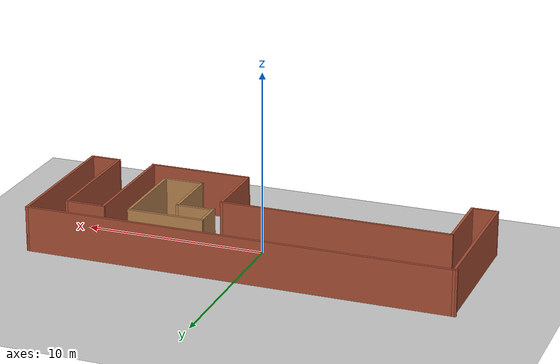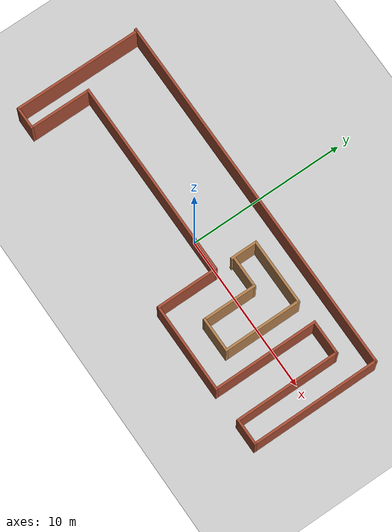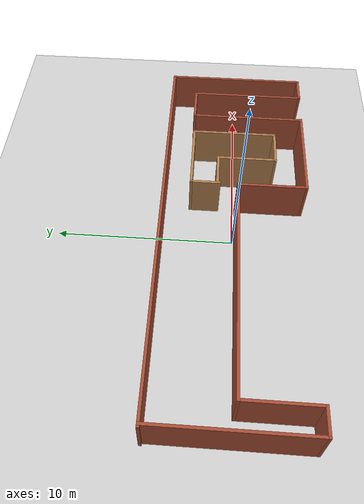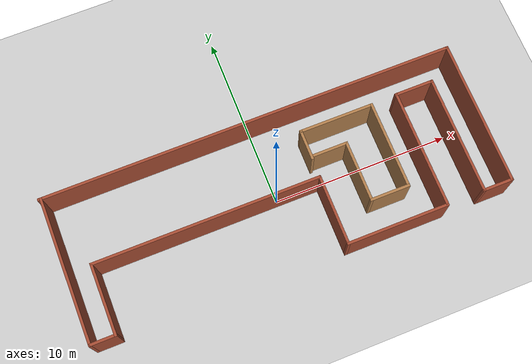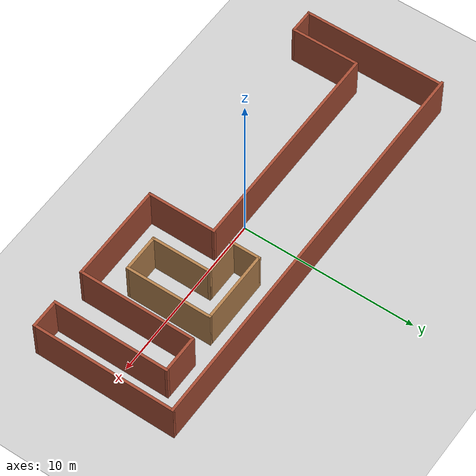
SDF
<sdf version="1.6">
 <world name="default">
  <light name="sun" type="directional">
   <pose>0 0 10 0 -0 0</pose>
   <diffuse>0.8 0.8 0.8 1</diffuse>
   <specular>0.1 0.1 0.1 1</specular>
   <attenuation>
    <range>1000</range>
    <constant>0.9</constant>
    <linear>0.01</linear>
    <quadratic>0.001</quadratic>
   </attenuation>
   <direction>-0.5 0.5 -1</direction>
  </light>
  <model name="ground_plane">
   <static>1</static>
   <link name="link">
    <collision name="collision">
     <geometry><plane><normal>0 0 1</normal><size>100 100</size></plane></geometry>
     <surface><friction><ode><mu>100</mu><mu2>50</mu2></ode></friction></surface>
    </collision>
    <visual name="visual">
     <cast_shadows>0</cast_shadows>
     <geometry><plane><normal>0 0 1</normal><size>100 100</size></plane></geometry>
     <material>
      <script><uri>file://media/materials/scripts/gazebo.material</uri><name>Gazebo/Grey</name></script>
     </material>
    </visual>
   </link>
  </model>
  <gravity>0 0 -9.8</gravity>
  <magnetic_field>6e-06 2.3e-05 -4.2e-05</magnetic_field>
  <atmosphere type="adiabatic"/>
  <physics name="default_physics" default="0" type="ode">
   <max_step_size>0.001</max_step_size>
   <real_time_factor>1</real_time_factor>
   <real_time_update_rate>1000</real_time_update_rate>
  </physics>
  <scene><ambient>0.4 0.4 0.4 1</ambient><background>0.7 0.7 0.7 1</background><shadows>1</shadows></scene>
  <spherical_coordinates>
   <surface_model>EARTH_WGS84</surface_model>
   <latitude_deg>0</latitude_deg>
   <longitude_deg>0</longitude_deg>
   <elevation>0</elevation>
   <heading_deg>0</heading_deg>
  </spherical_coordinates>
  <model name="building1">
   <link name="Wall_10">
    <collision name="Wall_10_Collision">
     <geometry><box><size>12.75 0.15 2.5</size></box></geometry>
     <pose>0 0 1.25 0 -0 0</pose>
    </collision>
    <visual name="Wall_10_Visual">
     <pose>0 0 1.25 0 -0 0</pose>
     <geometry><box><size>12.75 0.15 2.5</size></box></geometry>
     <material>
      <script><uri>file://media/materials/scripts/gazebo.material</uri><name>Gazebo/Bricks</name></script>
      <ambient>1 1 1 1</ambient>
     </material>
    </visual>
    <pose>-3.925 -0.2 0 0 -0 3.14159</pose>
   </link>
   <link name="Wall_11">
    <collision name="Wall_11_Collision">
     <geometry><box><size>4 0.15 2.5</size></box></geometry>
     <pose>0 0 1.25 0 -0 0</pose>
    </collision>
    <visual name="Wall_11_Visual">
     <pose>0 0 1.25 0 -0 0</pose>
     <geometry><box><size>4 0.15 2.5</size></box></geometry>
     <material>
      <script><uri>file://media/materials/scripts/gazebo.material</uri><name>Gazebo/Bricks</name></script>
      <ambient>1 1 1 1</ambient>
     </material>
    </visual>
    <pose>-10.225 -2.125 0 0 0 -1.5708</pose>
   </link>
   <link name="Wall_12">
    <collision name="Wall_12_Collision">
     <geometry><box><size>1.5 0.15 2.5</size></box></geometry>
     <pose>0 0 1.25 0 -0 0</pose>
    </collision>
    <visual name="Wall_12_Visual">
     <pose>0 0 1.25 0 -0 0</pose>
     <geometry><box><size>1.5 0.15 2.5</size></box></geometry>
     <material>
      <script><uri>file://media/materials/scripts/gazebo.material</uri><name>Gazebo/Bricks</name></script>
      <ambient>1 1 1 1</ambient>
     </material>
    </visual>
    <pose>-10.9 -4.05 0 0 -0 3.14159</pose>
   </link>
   <link name="Wall_13">
    <collision name="Wall_13_Collision">
     <geometry><box><size>8.25 0.15 2.5</size></box></geometry>
     <pose>0 0 1.25 0 -0 0</pose>
    </collision>
    <visual name="Wall_13_Visual">
     <pose>0 0 1.25 0 -0 0</pose>
     <geometry><box><size>8.25 0.15 2.5</size></box></geometry>
     <material>
      <script><uri>file://media/materials/scripts/gazebo.material</uri><name>Gazebo/Bricks</name></script>
      <ambient>1 1 1 1</ambient>
     </material>
    </visual>
    <pose>-11.575 0 0 0 -0 1.5708</pose>
   </link>
   <link name="Wall_15">
    <collision name="Wall_15_Collision">
     <geometry><box><size>4.25 0.15 2.5</size></box></geometry>
     <pose>0 0 1.25 0 -0 0</pose>
    </collision>
    <visual name="Wall_15_Visual">
     <pose>0 0 1.25 0 -0 0</pose>
     <geometry><box><size>4.25 0.15 2.5</size></box></geometry>
     <material>
      <script><uri>file://media/materials/scripts/gazebo.material</uri><name>Gazebo/Wood</name></script>
      <ambient>1 1 1 1</ambient>
     </material>
    </visual>
    <pose>4.45648 2.49777 0 0 -0 0</pose>
   </link>
   <link name="Wall_16">
    <collision name="Wall_16_Collision">
     <geometry><box><size>5 0.15 2.5</size></box></geometry>
     <pose>0 0 1.25 0 -0 0</pose>
    </collision>
    <visual name="Wall_16_Visual">
     <pose>0 0 1.25 0 -0 0</pose>
     <geometry><box><size>5 0.15 2.5</size></box></geometry>
     <material>
      <script><uri>file://media/materials/scripts/gazebo.material</uri><name>Gazebo/Wood</name></script>
      <ambient>1 1 1 1</ambient>
     </material>
    </visual>
    <pose>6.50648 0.072769 0 0 0 -1.5708</pose>
   </link>
   <link name="Wall_17">
    <collision name="Wall_17_Collision">
     <geometry><box><size>2.25 0.15 2.5</size></box></geometry>
     <pose>0 0 1.25 0 -0 0</pose>
    </collision>
    <visual name="Wall_17_Visual">
     <pose>0 0 1.25 0 -0 0</pose>
     <geometry><box><size>2.25 0.15 2.5</size></box></geometry>
     <material>
      <script><uri>file://media/materials/scripts/gazebo.material</uri><name>Gazebo/Wood</name></script>
      <ambient>1 1 1 1</ambient>
     </material>
    </visual>
    <pose>5.45648 -2.35223 0 0 -0 3.14159</pose>
   </link>
   <link name="Wall_18">
    <collision name="Wall_18_Collision">
     <geometry><box><size>3.5 0.15 2.5</size></box></geometry>
     <pose>0 0 1.25 0 -0 0</pose>
    </collision>
    <visual name="Wall_18_Visual">
     <pose>0 0 1.25 0 -0 0</pose>
     <geometry><box><size>3.5 0.15 2.5</size></box></geometry>
     <material>
      <script><uri>file://media/materials/scripts/gazebo.material</uri><name>Gazebo/Wood</name></script>
      <ambient>1 1 1 1</ambient>
     </material>
    </visual>
    <pose>4.40648 -0.677231 0 0 -0 1.5708</pose>
   </link>
   <link name="Wall_19">
    <collision name="Wall_19_Collision">
     <geometry><box><size>2 0.15 2.5</size></box></geometry>
     <pose>0 0 1.25 0 -0 0</pose>
    </collision>
    <visual name="Wall_19_Visual">
     <pose>0 0 1.25 0 -0 0</pose>
     <geometry><box><size>2 0.15 2.5</size></box></geometry>
     <material>
      <script><uri>file://media/materials/scripts/gazebo.material</uri><name>Gazebo/Wood</name></script>
      <ambient>1 1 1 1</ambient>
     </material>
    </visual>
    <pose>3.48148 0.997769 0 0 -0 3.14159</pose>
   </link>
   <link name="Wall_2">
    <collision name="Wall_2_Collision">
     <geometry><box><size>23.5 0.15 2.5</size></box></geometry>
     <pose>0 0 1.25 0 -0 0</pose>
    </collision>
    <visual name="Wall_2_Visual">
     <pose>0 0 1.25 0 -0 0</pose>
     <geometry><box><size>23.5 0.15 2.5</size></box></geometry>
     <material>
      <script><uri>file://media/materials/scripts/gazebo.material</uri><name>Gazebo/Bricks</name></script>
      <ambient>1 1 1 1</ambient>
     </material>
    </visual>
    <pose>0 4.05 0 0 -0 0</pose>
   </link>
   <link name="Wall_22">
    <collision name="Wall_22_Collision">
     <geometry><box><size>1.75 0.15 2.5</size></box></geometry>
     <pose>0 0 1.25 0 -0 0</pose>
    </collision>
    <visual name="Wall_22_Visual">
     <pose>0 0 1.25 0 -0 0</pose>
     <geometry><box><size>1.75 0.15 2.5</size></box></geometry>
     <material>
      <script><uri>file://media/materials/scripts/gazebo.material</uri><name>Gazebo/Wood</name></script>
      <ambient>1 1 1 1</ambient>
     </material>
    </visual>
    <pose>2.40648 1.69777 0 0 0 -1.5708</pose>
   </link>
   <link name="Wall_3">
    <collision name="Wall_3_Collision">
     <geometry><box><size>8.25 0.15 2.5</size></box></geometry>
     <pose>0 0 1.25 0 -0 0</pose>
    </collision>
    <visual name="Wall_3_Visual">
     <pose>0 0 1.25 0 -0 0</pose>
     <geometry><box><size>8.25 0.15 2.5</size></box></geometry>
     <material>
      <script><uri>file://media/materials/scripts/gazebo.material</uri><name>Gazebo/Bricks</name></script>
      <ambient>1 1 1 1</ambient>
     </material>
    </visual>
    <pose>11.675 0 0 0 0 -1.5708</pose>
   </link>
   <link name="Wall_4">
    <collision name="Wall_4_Collision">
     <geometry><box><size>1.75 0.15 2.5</size></box></geometry>
     <pose>0 0 1.25 0 -0 0</pose>
    </collision>
    <visual name="Wall_4_Visual">
     <pose>0 0 1.25 0 -0 0</pose>
     <geometry><box><size>1.75 0.15 2.5</size></box></geometry>
     <material>
      <script><uri>file://media/materials/scripts/gazebo.material</uri><name>Gazebo/Bricks</name></script>
      <ambient>1 1 1 1</ambient>
     </material>
    </visual>
    <pose>10.875 -4.05 0 0 -0 3.14159</pose>
   </link>
   <link name="Wall_5">
    <collision name="Wall_5_Collision">
     <geometry><box><size>6.75 0.15 2.5</size></box></geometry>
     <pose>0 0 1.25 0 -0 0</pose>
    </collision>
    <visual name="Wall_5_Visual">
     <pose>0 0 1.25 0 -0 0</pose>
     <geometry><box><size>6.75 0.15 2.5</size></box></geometry>
     <material>
      <script><uri>file://media/materials/scripts/gazebo.material</uri><name>Gazebo/Bricks</name></script>
      <ambient>1 1 1 1</ambient>
     </material>
    </visual>
    <pose>10.075 -0.75 0 0 -0 1.5708</pose>
   </link>
   <link name="Wall_6">
    <collision name="Wall_6_Collision">
     <geometry><box><size>2.25 0.15 2.5</size></box></geometry>
     <pose>0 0 1.25 0 -0 0</pose>
    </collision>
    <visual name="Wall_6_Visual">
     <pose>0 0 1.25 0 -0 0</pose>
     <geometry><box><size>2.25 0.15 2.5</size></box></geometry>
     <material>
      <script><uri>file://media/materials/scripts/gazebo.material</uri><name>Gazebo/Bricks</name></script>
      <ambient>1 1 1 1</ambient>
     </material>
    </visual>
    <pose>9.025 2.55 0 0 -0 3.14159</pose>
   </link>
   <link name="Wall_7">
    <collision name="Wall_7_Collision">
     <geometry><box><size>6.75 0.15 2.5</size></box></geometry>
     <pose>0 0 1.25 0 -0 0</pose>
    </collision>
    <visual name="Wall_7_Visual">
     <pose>0 0 1.25 0 -0 0</pose>
     <geometry><box><size>6.75 0.15 2.5</size></box></geometry>
     <material>
      <script><uri>file://media/materials/scripts/gazebo.material</uri><name>Gazebo/Bricks</name></script>
      <ambient>1 1 1 1</ambient>
     </material>
    </visual>
    <pose>7.975 -0.75 0 0 0 -1.5708</pose>
   </link>
   <link name="Wall_8">
    <collision name="Wall_8_Collision">
     <geometry><box><size>5.75 0.15 2.5</size></box></geometry>
     <pose>0 0 1.25 0 -0 0</pose>
    </collision>
    <visual name="Wall_8_Visual">
     <pose>0 0 1.25 0 -0 0</pose>
     <geometry><box><size>5.75 0.15 2.5</size></box></geometry>
     <material>
      <script><uri>file://media/materials/scripts/gazebo.material</uri><name>Gazebo/Bricks</name></script>
      <ambient>1 1 1 1</ambient>
     </material>
    </visual>
    <pose>5.175 -4.05 0 0 -0 3.14159</pose>
   </link>
   <link name="Wall_9">
    <collision name="Wall_9_Collision">
     <geometry><box><size>4 0.15 2.5</size></box></geometry>
     <pose>0 0 1.25 0 -0 0</pose>
    </collision>
    <visual name="Wall_9_Visual">
     <pose>0 0 1.25 0 -0 0</pose>
     <geometry><box><size>4 0.15 2.5</size></box></geometry>
     <material>
      <script><uri>file://media/materials/scripts/gazebo.material</uri><name>Gazebo/Bricks</name></script>
      <ambient>1 1 1 1</ambient>
     </material>
    </visual>
    <pose>2.375 -2.125 0 0 -0 1.5708</pose>
   </link>
   <static>1</static>
  </model>
 </world>
</sdf>
